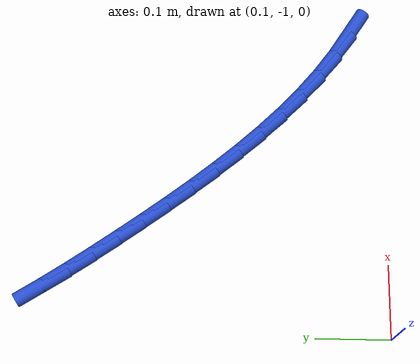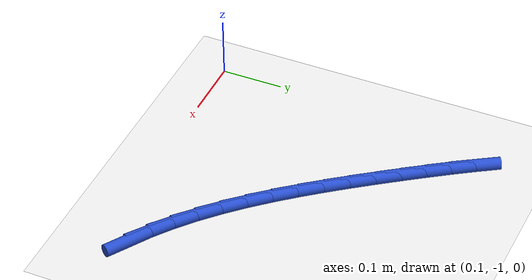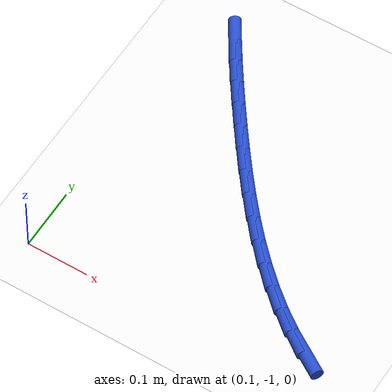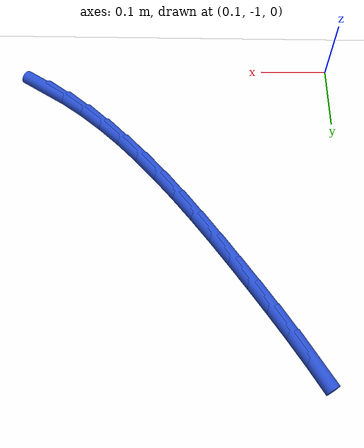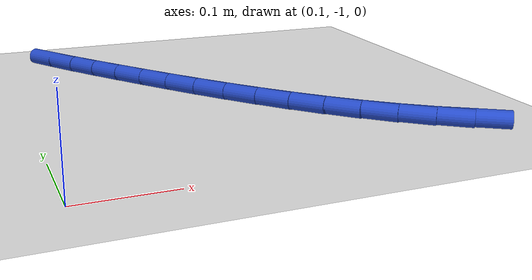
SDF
<sdf version="1.6">
 <world name="default">
  <model name="ground_plane">
   <static>1</static>
   <link name="link">
    <collision name="collision">
     <geometry><plane><normal>0 0 1</normal><size>100 100</size></plane></geometry>
     <surface><friction><ode><mu>100</mu><mu2>50</mu2></ode></friction></surface>
    </collision>
    <visual name="visual">
     <cast_shadows>0</cast_shadows>
     <geometry><plane><normal>0 0 1</normal><size>100 100</size></plane></geometry>
     <material>
      <script><uri>file://media/materials/scripts/gazebo.material</uri><name>Gazebo/WhiteGlow</name></script>
     </material>
    </visual>
   </link>
  </model>
  <model name="line">
   <link name="link_151">
    <pose>0.5316608969467729 -0.9543983366120286 0.01 0 1.57 -0.569076832165642</pose>
    <collision name="collision">
     <geometry><cylinder><radius>0.01</radius><length>0.08</length></cylinder></geometry>
    </collision>
    <visual name="visual">
     <material>
      <script><name>Gazebo/Blue</name><uri>file://media/materials/scripts/gazebo.material</uri></script>
     </material>
     <geometry><cylinder><radius>0.01</radius><length>0.08</length></cylinder></geometry>
    </visual>
   </link>
   <link name="link_152">
    <pose>0.4998573393994627 -0.934054654220046 0.01 0 1.57 -0.6396445619077767</pose>
    <collision name="collision">
     <geometry><cylinder><radius>0.01</radius><length>0.08</length></cylinder></geometry>
    </collision>
    <visual name="visual">
     <material>
      <script><name>Gazebo/Blue</name><uri>file://media/materials/scripts/gazebo.material</uri></script>
     </material>
     <geometry><cylinder><radius>0.01</radius><length>0.08</length></cylinder></geometry>
    </visual>
   </link>
   <link name="link_153">
    <pose>0.46902174838799077 -0.9111132367714617 0.01 0 1.57 -0.7011033685772273</pose>
    <collision name="collision">
     <geometry><cylinder><radius>0.01</radius><length>0.08</length></cylinder></geometry>
    </collision>
    <visual name="visual">
     <material>
      <script><name>Gazebo/Blue</name><uri>file://media/materials/scripts/gazebo.material</uri></script>
     </material>
     <geometry><cylinder><radius>0.01</radius><length>0.08</length></cylinder></geometry>
    </visual>
   </link>
   <link name="link_154">
    <pose>0.4391232473587233 -0.8858736311299104 0.01 0 1.57 -0.7542145359895042</pose>
    <collision name="collision">
     <geometry><cylinder><radius>0.01</radius><length>0.08</length></cylinder></geometry>
    </collision>
    <visual name="visual">
     <material>
      <script><name>Gazebo/Blue</name><uri>file://media/materials/scripts/gazebo.material</uri></script>
     </material>
     <geometry><cylinder><radius>0.01</radius><length>0.08</length></cylinder></geometry>
    </visual>
   </link>
   <link name="link_155">
    <pose>0.41013095975802855 -0.8586353841590286 0.01 0 1.57 -0.7997762959732352</pose>
    <collision name="collision">
     <geometry><cylinder><radius>0.01</radius><length>0.08</length></cylinder></geometry>
    </collision>
    <visual name="visual">
     <material>
      <script><name>Gazebo/Blue</name><uri>file://media/materials/scripts/gazebo.material</uri></script>
     </material>
     <geometry><cylinder><radius>0.01</radius><length>0.08</length></cylinder></geometry>
    </visual>
   </link>
   <link name="link_156">
    <pose>0.3820140090322723 -0.8296980427224512 0.01 0 1.57 -0.8385407828625183</pose>
    <collision name="collision">
     <geometry><cylinder><radius>0.01</radius><length>0.08</length></cylinder></geometry>
    </collision>
    <visual name="visual">
     <material>
      <script><name>Gazebo/Blue</name><uri>file://media/materials/scripts/gazebo.material</uri></script>
     </material>
     <geometry><cylinder><radius>0.01</radius><length>0.08</length></cylinder></geometry>
    </visual>
   </link>
   <link name="link_157">
    <pose>0.35474151862782144 -0.7993611536838133 0.01 0 1.57 -0.8711689859809209</pose>
    <collision name="collision">
     <geometry><cylinder><radius>0.01</radius><length>0.08</length></cylinder></geometry>
    </collision>
    <visual name="visual">
     <material>
      <script><name>Gazebo/Blue</name><uri>file://media/materials/scripts/gazebo.material</uri></script>
     </material>
     <geometry><cylinder><radius>0.01</radius><length>0.08</length></cylinder></geometry>
    </visual>
   </link>
   <link name="link_158">
    <pose>0.32828261199104286 -0.7679242639067504 0.01 0 1.57 -0.8982092113541779</pose>
    <collision name="collision">
     <geometry><cylinder><radius>0.01</radius><length>0.08</length></cylinder></geometry>
    </collision>
    <visual name="visual">
     <material>
      <script><name>Gazebo/Blue</name><uri>file://media/materials/scripts/gazebo.material</uri></script>
     </material>
     <geometry><cylinder><radius>0.01</radius><length>0.08</length></cylinder></geometry>
    </visual>
   </link>
   <link name="link_159">
    <pose>0.3026064125683026 -0.7356869202548971 0.01 0 1.57 -0.9200880754781947</pose>
    <collision name="collision">
     <geometry><cylinder><radius>0.01</radius><length>0.08</length></cylinder></geometry>
    </collision>
    <visual name="visual">
     <material>
      <script><name>Gazebo/Blue</name><uri>file://media/materials/scripts/gazebo.material</uri></script>
     </material>
     <geometry><cylinder><radius>0.01</radius><length>0.08</length></cylinder></geometry>
    </visual>
   </link>
   <link name="link_160">
    <pose>0.2776820438059688 -0.7029486695918901 0.01 0 1.57 -0.9371064542370805</pose>
    <collision name="collision">
     <geometry><cylinder><radius>0.01</radius><length>0.08</length></cylinder></geometry>
    </collision>
    <visual name="visual">
     <material>
      <script><name>Gazebo/Blue</name><uri>file://media/materials/scripts/gazebo.material</uri></script>
     </material>
     <geometry><cylinder><radius>0.01</radius><length>0.08</length></cylinder></geometry>
    </visual>
   </link>
   <link name="link_161">
    <pose>0.2534786291504073 -0.6700090587813639 0.01 0 1.57 -0.9494425236417594</pose>
    <collision name="collision">
     <geometry><cylinder><radius>0.01</radius><length>0.08</length></cylinder></geometry>
    </collision>
    <visual name="visual">
     <material>
      <script><name>Gazebo/Blue</name><uri>file://media/materials/scripts/gazebo.material</uri></script>
     </material>
     <geometry><cylinder><radius>0.01</radius><length>0.08</length></cylinder></geometry>
    </visual>
   </link>
   <link name="link_162">
    <pose>0.22996538937482447 -0.6371672640620949 0.01 0 1.57 -0.9594401497757911</pose>
    <collision name="collision">
     <geometry><cylinder><radius>0.01</radius><length>0.08</length></cylinder></geometry>
    </collision>
    <visual name="visual">
     <material>
      <script><name>Gazebo/Blue</name><uri>file://media/materials/scripts/gazebo.material</uri></script>
     </material>
     <geometry><cylinder><radius>0.01</radius><length>0.08</length></cylinder></geometry>
    </visual>
   </link>
   <link name="link_163">
    <pose>0.20714207030979906 -0.6046062209198189 0.01 0 1.57 -0.9727184362901904</pose>
    <collision name="collision">
     <geometry><cylinder><radius>0.01</radius><length>0.08</length></cylinder></geometry>
    </collision>
    <visual name="visual">
     <material>
      <script><name>Gazebo/Blue</name><uri>file://media/materials/scripts/gazebo.material</uri></script>
     </material>
     <geometry><cylinder><radius>0.01</radius><length>0.08</length></cylinder></geometry>
    </visual>
   </link>
   <link name="link_164">
    <pose>0.185082175456668 -0.5722279924053175 0.01 0 1.57 -0.9902075338688762</pose>
    <collision name="collision">
     <geometry><cylinder><radius>0.01</radius><length>0.08</length></cylinder></geometry>
    </collision>
    <visual name="visual">
     <material>
      <script><name>Gazebo/Blue</name><uri>file://media/materials/scripts/gazebo.material</uri></script>
     </material>
     <geometry><cylinder><radius>0.01</radius><length>0.08</length></cylinder></geometry>
    </visual>
   </link>
   <link name="link_165">
    <pose>0.16387012741213036 -0.5398930611768458 0.01 0 1.57 -1.0119684590748823</pose>
    <collision name="collision">
     <geometry><cylinder><radius>0.01</radius><length>0.08</length></cylinder></geometry>
    </collision>
    <visual name="visual">
     <material>
      <script><name>Gazebo/Blue</name><uri>file://media/materials/scripts/gazebo.material</uri></script>
     </material>
     <geometry><cylinder><radius>0.01</radius><length>0.08</length></cylinder></geometry>
    </visual>
   </link>
  </model>
 </world>
</sdf>
